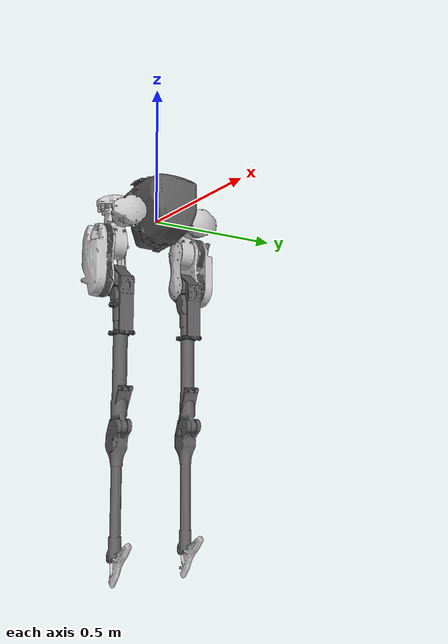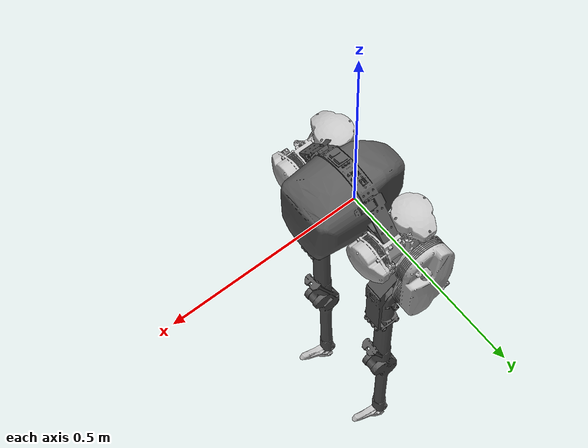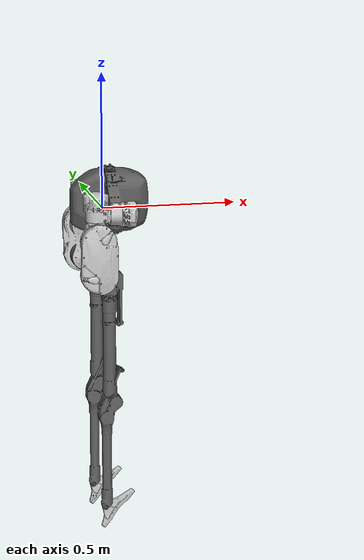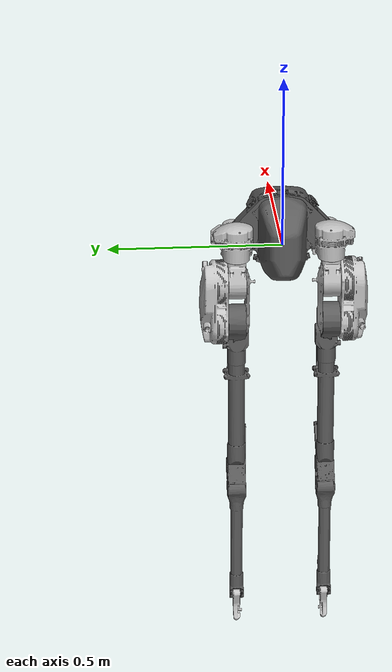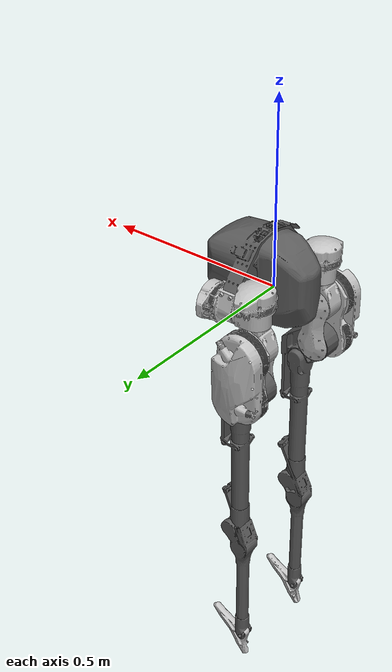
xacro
<?xml version="1.0"?>
<!-- Author: Ross Hartley
	 Email:  rosshart@umich.edu
     Date:   04/24/2016   -->
<robot name="cassie"
  xmlns:xacro="http://ros.org/wiki/xacro">

  <!-- Properties -->
  <xacro:property name="black_RGB" value="0.1 0.1 0.1 1" />
  <xacro:property name="grey_RGB" value="0.35 0.35 0.35 1" />
  <xacro:property name="orange_RGB" value=".9569 .5372 .2588 1" />
  <xacro:property name="blue_RGB" value=".0157 .1176 .2588 1" />
  <xacro:property name="maize_RGB" value=".9451 .7686 0 1" />
  <xacro:property name="light_grey_RGB" value="0.75 0.75 0.75 1" />

  <!-- Link Definitions-->
  <xacro:macro name="map">
    <link name="map">
      <inertial>
        <origin xyz="0 0 0" rpy="0 0 0"/>
        <mass value="0" />
                <inertia ixx="0" ixy="0" ixz="0" iyy="0" iyz="0" izz="0" />
      </inertial>
    </link>
  </xacro:macro>
  <xacro:macro name="x_link">
    <link name="x_link">
      <inertial>
        <origin xyz="0 0 0" rpy="0 0 0"/>
        <mass value="0" />
                <inertia ixx="0" ixy="0" ixz="0" iyy="0" iyz="0" izz="0" />
      </inertial>
    </link>
  </xacro:macro>
  <xacro:macro name="y_link">
    <link name="y_link">
      <inertial>
        <origin xyz="0 0 0" rpy="0 0 0"/>
        <mass value="0" />
                <inertia ixx="0" ixy="0" ixz="0" iyy="0" iyz="0" izz="0" />
      </inertial>
    </link>
  </xacro:macro>
  <xacro:macro name="z_link">
    <link name="z_link">
      <inertial>
        <origin xyz="0 0 0" rpy="0 0 0"/>
        <mass value="0" />
                <inertia ixx="0" ixy="0" ixz="0" iyy="0" iyz="0" izz="0" />
      </inertial>
    </link>
  </xacro:macro>
  <xacro:macro name="yaw_link">
    <link name="yaw_link">
      <inertial>
        <origin xyz="0 0 0" rpy="0 0 0"/>
        <mass value="0" />
                <inertia ixx="0" ixy="0" ixz="0" iyy="0" iyz="0" izz="0" />
      </inertial>
    </link>
  </xacro:macro>
  <xacro:macro name="pitch_link">
    <link name="pitch_link">
      <inertial>
        <origin xyz="0 0 0" rpy="0 0 0"/>
        <mass value="0" />
                <inertia ixx="0" ixy="0" ixz="0" iyy="0" iyz="0" izz="0" />
      </inertial>
    </link>
  </xacro:macro>
  <xacro:macro name="vectorNav">
    <link name="vectorNav">
      <inertial>
        <origin xyz="0 0 0" rpy="0 0 0"/>
        <mass value="0" />
                <inertia ixx="0" ixy="0" ixz="0" iyy="0" iyz="0" izz="0" />
      </inertial>
    </link>
  </xacro:macro>
  <xacro:macro name="pelvis" params="cname color">
    <link name="pelvis">
      <inertial>
        <origin xyz=".0507 0 .0284" rpy="0 0 0"/>
        <mass value="10.33" />
		<inertia ixx=".0942" ixy=".000169" ixz=".015" iyy=".084" iyz=".000516" izz=".113" />
      </inertial>
      <visual>
        <origin xyz="0 0 0" rpy="0 0 0" />
        <geometry>
          <mesh filename="package://cassie_description/meshes/pelvis.stl" scale="1 1 1"/>
        </geometry>
        <material name="${cname}">
          <color rgba="${color}" />
        </material>
      </visual>
    </link>
  </xacro:macro>
  <xacro:macro name="pelvis_abduction" params="side cname color stl_ext">
    <link name="${side}_pelvis_abduction">
      <inertial>
        <origin xyz="0 0 0" rpy="0 0 0"/>
        <mass value="0" />
        <inertia ixx="0" ixy="0" ixz="0" iyy="0" iyz="0" izz="0" />
      </inertial>
      <visual>
        <origin xyz="0 0 0" rpy="0 0 0" />
        <geometry>
          <mesh filename="package://cassie_description/meshes/abduction${stl_ext}.stl" scale="1 1 1"/>
        </geometry>
        <material name="${cname}">
          <color rgba="${color}" />
        </material>
      </visual>
    </link>
  </xacro:macro>
  <xacro:macro name="pelvis_rotation" params="side cname color stl_ext reflect">
    <link name="${side}_pelvis_rotation">
      <inertial>
        <origin xyz=".0257 ${reflect*.0001} .0179" rpy="0 0 0"/>
        <mass value="1.82" />
        <inertia ixx=".00272" ixy="${reflect*.000000703}" ixz=".00000153" iyy=".00559" iyz="${reflect*.00000261}" izz=".004640" />
      </inertial>
      <visual>
        <origin xyz="0 0 0" rpy="0 0 0" />
        <geometry>
          <mesh filename="package://cassie_description/meshes/yaw${stl_ext}.stl" scale="1 1 1"/>
        </geometry>
        <material name="${cname}">
          <color rgba="${color}" />
        </material>
      </visual>
    </link>
  </xacro:macro>
  <xacro:macro name="hip" params="side cname color stl_ext">
    <link name="${side}_hip">
      <inertial>
        <origin xyz="-.0557 0 0" rpy="0 0 0"/>
        <mass value="1.17" />
        <inertia ixx=".000842" ixy=".000000246" ixz="-.000000625" iyy=".006080" iyz="-.00000004" izz=".006440" />
      </inertial>
      <visual>
        <origin xyz="0 0 0" rpy="0 0 0" />
        <geometry>
          <mesh filename="package://cassie_description/meshes/hip${stl_ext}.stl" scale="1 1 1"/>
        </geometry>
        <material name="${cname}">
          <color rgba="${color}" />
        </material>
      </visual>
    </link>
  </xacro:macro>
  <xacro:macro name="thigh" params="side cname color stl_ext reflect">
    <link name="${side}_thigh">
      <inertial>
        <origin xyz=".0598 .0001 ${reflect*-.0358}" rpy="0 0 0"/>
        <mass value="5.52" />
        <inertia ixx=".018" ixy=".000284" ixz="${reflect*-.0117}" iyy=".0563" iyz="${reflect*-.0000193}" izz=".0498" />
      </inertial>
      <visual>
        <origin xyz="0 0 0" rpy="0 0 0" />
        <geometry>
          <mesh filename="package://cassie_description/meshes/thigh${stl_ext}.stl" scale="1 1 1"/>
        </geometry>
        <material name="${cname}">
          <color rgba="${color}" />
        </material>
      </visual>
    </link>
  </xacro:macro>
  <xacro:macro name="knee" params="side cname color stl_ext reflect">
    <link name="${side}_knee">
      <inertial>
        <origin xyz=".023 .0321 ${reflect*-.0022}" rpy="0 0 0"/>
        <mass value=".758" />
        <inertia ixx=".002160" ixy=".000956" ixz="${reflect*.00000284}" iyy=".00144" iyz="${reflect*.000000739}" izz=".00334" />
      </inertial>
      <visual>
        <origin xyz="0 0 0" rpy="0 0 0" />
        <geometry>
          <mesh filename="package://cassie_description/meshes/knee-output${stl_ext}.stl" scale="1 1 1"/>
        </geometry>
        <material name="${cname}">
          <color rgba="${color}" />
        </material>
      </visual>
    </link>
  </xacro:macro>
  <xacro:macro name="shin" params="side cname color stl_ext reflect">
    <link name="${side}_shin">
      <inertial>
        <origin xyz=".1834 .0012 ${reflect*.0002}" rpy="0 0 0"/>
        <mass value=".577" />
        <inertia ixx=".000360" ixy=".000334" ixz="${reflect*-.000000194}" iyy=".0341" iyz="${reflect*.000000265}" izz=".0341" />
      </inertial>
      <visual>
        <origin xyz="0 0 0" rpy="0 0 0" />
        <geometry>
          <mesh filename="package://cassie_description/meshes/shin-bone${stl_ext}.stl" scale="1 1 1"/>
        </geometry>
        <material name="${cname}">
          <color rgba="${color}" />
        </material>
      </visual>
    </link>
  </xacro:macro>
  <xacro:macro name="tarsus" params="side cname color stl_ext reflect">
    <link name="${side}_tarsus">
      <inertial>
        <origin xyz=".1105 -.0306 ${reflect*-.0013}" rpy="0 0 0"/>
        <mass value=".782" />
        <inertia ixx=".00113" ixy="-.00288" ixz="${reflect*-.0000633}" iyy=".0231" iyz="${reflect*.0000362}" izz=".0239" />
      </inertial>
      <visual>
        <origin xyz="0 0 0" rpy="0 0 0" />
        <geometry>
          <mesh filename="package://cassie_description/meshes/tarsus${stl_ext}.stl" scale="1 1 1"/>
        </geometry>
        <material name="${cname}">
          <color rgba="${color}" />
        </material>
      </visual>
    </link>
  </xacro:macro>
  <xacro:macro name="toe" params="side cname color stl_ext reflect">
    <link name="${side}_toe">
      <inertial>
        <origin xyz=".0047 .0275 ${reflect*-.0001}" rpy="0 0 0"/>
        <mass value=".15" />
        <inertia ixx=".000287" ixy="-.0000986" ixz="${reflect*-.00000146}" iyy=".000171" iyz="${reflect*.000000172}" izz=".000449" />
      </inertial>
      <visual>
        <origin xyz="0 0 0" rpy="0 0 0" />
        <geometry>
          <mesh filename="package://cassie_description/meshes/toe${stl_ext}.stl" scale="1 1 1"/>
        </geometry>
        <material name="${cname}">
          <color rgba="${color}" />
        </material>
      </visual>
    </link>
  </xacro:macro>

  <!-- Joint Definitions -->
  <xacro:macro name="x">
    <joint name="x" type="prismatic">
      <origin xyz="0 0 0" rpy="0 0 0"/>
      <axis xyz="1 0 0"/>
      <limit lower="-1000" upper="1000" effort="1000" velocity="1000" />
      <parent link="map" />
      <child link="x_link" />
    </joint>
  </xacro:macro>
  <xacro:macro name="y">
    <joint name="y" type="prismatic">
      <origin xyz="0 0 0" rpy="0 0 0"/>
      <axis xyz="0 1 0"/>
      <limit lower="-1000" upper="1000" effort="1000" velocity="1000" />
      <parent link="x_link" />
      <child link="y_link" />
    </joint>
  </xacro:macro>
  <xacro:macro name="z">
    <joint name="z" type="prismatic">
      <origin xyz="0 0 0" rpy="0 0 0"/>
      <axis xyz="0 0 1"/>
      <limit lower="-1000" upper="1000" effort="1000" velocity="1000" />
      <parent link="y_link" />
      <child link="z_link" />
    </joint>
  </xacro:macro>
  <xacro:macro name="yaw">
    <joint name="yaw" type="continuous">
      <origin xyz="0 0 0" rpy="0 0 0"/>
      <axis xyz="0 0 1"/>
      <parent link="z_link" />
      <child link="yaw_link" />
    </joint>
  </xacro:macro>
  <xacro:macro name="pitch">
    <joint name="pitch" type="continuous">
      <origin xyz="0 0 0" rpy="0 0 0"/>
      <axis xyz="0 1 0"/>
      <parent link="yaw_link" />
      <child link="pitch_link" />
    </joint>
  </xacro:macro>
  <xacro:macro name="roll">
    <joint name="roll" type="continuous">
      <origin xyz="0 0 0" rpy="0 0 0"/>
      <axis xyz="1 0 0"/>
      <parent link="pitch_link" />
      <child link="pelvis" />
    </joint>
  </xacro:macro>
  <xacro:macro name="fixed_pelvis_to_vectorNav">
    <joint name="fixed_pelvis_to_vectorNav" type="fixed">
      <origin xyz="0.03155 0 -0.07996" rpy="0 0 0"/>
      <parent link="pelvis" />
      <child link="vectorNav" />
    </joint>
  </xacro:macro>
  <xacro:macro name="fixed_pelvis_to_abduction" params="side reflect">
    <joint name="fixed_${side}" type="fixed">
      <origin xyz="0.021 ${reflect*0.135} 0" rpy="0 ${pi/2} 0"/>
      <parent link="pelvis" />
      <child link="${side}_pelvis_abduction" />
    </joint>
  </xacro:macro>
  <xacro:macro name="hip_abduction" params="side">
    <joint name="hip_abduction_${side}" type="continuous">
      <origin xyz="0 0 -0.07" rpy="0 ${-pi/2} 0"/>
      <axis xyz="1 0 0"/>
      <parent link="${side}_pelvis_abduction" />
      <child link="${side}_pelvis_rotation" />
	  <xacro:if value="${side == 'left'}">
	    <limit lower="-0.2618" upper="0.3927" effort="4.5" velocity="12.1475" />
	  </xacro:if>
	  <xacro:if value="${side == 'right'}">
	    <limit lower="-0.3927" upper="0.2618" effort="4.5" velocity="12.1475" />
	  </xacro:if>
    </joint>
  </xacro:macro>
  <xacro:macro name="hip_rotation" params="side">
    <joint name="hip_rotation_${side}" type="continuous">
      <origin xyz="0 0 -0.09" rpy="0 ${pi/2} ${-pi/2}"/>
      <axis xyz="-1 0 0"/>
      <parent link="${side}_pelvis_rotation" />
      <child link="${side}_hip" />
      <limit lower="-0.3927" upper="0.3927" effort="4.5" velocity="12.1475" />
    </joint>
  </xacro:macro>
  <xacro:macro name="hip_flexion" params="side">
    <joint name="hip_flexion_${side}" type="continuous">
      <origin xyz="0 0 0" rpy="0 0 0"/>
      <axis xyz="0 0 1"/>
      <parent link="${side}_hip" />
      <child link="${side}_thigh" />
      <limit lower="-0.8727" upper="1.3963" effort="12.2" velocity="8.5085" />
    </joint>
  </xacro:macro>
  <xacro:macro name="knee_joint" params="side reflect">
    <joint name="knee_joint_${side}" type="continuous">
      <origin xyz="0.12 0 ${reflect*0.0045}" rpy="0 0 0"/>
      <axis xyz="0 0 1"/>
      <parent link="${side}_thigh" />
      <child link="${side}_knee" />
      <limit lower="-2.8623" upper="-0.6458" effort="12.2" velocity="8.5085" />
    </joint>
  </xacro:macro>
  <xacro:macro name="knee_to_shin" params="side">
    <joint name="knee_to_shin_${side}" type="continuous">
      <origin xyz="0.0607 0.0474 0" rpy="0 0 0"/>
      <axis xyz="0 0 1"/>
      <parent link="${side}_knee" />
      <child link="${side}_shin" />
      <limit lower="-100" upper="100" effort="0" velocity="100" />
    </joint>
  </xacro:macro>
  <xacro:macro name="ankle_joint" params="side">
    <joint name="ankle_joint_${side}" type="continuous">
      <origin xyz="0.4348 0.02 0" rpy="0 0 0"/>
      <axis xyz="0 0 1"/>
      <parent link="${side}_shin" />
      <child link="${side}_tarsus" />
      <limit lower="-100" upper="100" effort="0" velocity="100" />
    </joint>
  </xacro:macro>
  <xacro:macro name="toe_joint" params="side">
    <joint name="toe_joint_${side}" type="continuous">
      <origin xyz="0.408 -0.04 0" rpy="0 0 0"/>
      <axis xyz="0 0 1"/>
      <parent link="${side}_tarsus" />
      <child link="${side}_toe" />
      <limit lower="-2.4435" upper="-0.5236" effort="0.9" velocity="11.5192" />
    </joint>
  </xacro:macro>

  <!-- Transmission Definitions -->
  <xacro:macro name="hip_abduction_trans" params="side">
    <transmission name="hip_abduction_trans_${side}" type="transmission_interface/SimpleTransmission">
	  <joint name="hip_abduction_${side}"/>
	  <actuator name="hip_abduction_motor_${side}"/>
	  <motorInertia>0.000061</motorInertia>
	  <mechanicalReduction>25</mechanicalReduction>
    </transmission>
  </xacro:macro>
  <xacro:macro name="hip_rotation_trans" params="side">
    <transmission name="hip_rotation_trans_${side}" type="transmission_interface/SimpleTransmission">
	  <joint name="hip_rotation_${side}"/>
	  <actuator name="hip_rotation_motor_${side}"/>
	  <motorInertia>0.000061</motorInertia>
	  <mechanicalReduction>25</mechanicalReduction>
    </transmission>
  </xacro:macro>
  <xacro:macro name="hip_flexion_trans" params="side">
    <transmission name="hip_flexion_trans_${side}" type="transmission_interface/SimpleTransmission">
	  <joint name="hip_flexion_${side}"/>
	  <actuator name="hip_flexion_motor_${side}"/>
	  <motorInertia>0.000365</motorInertia>
	  <mechanicalReduction>16</mechanicalReduction>
    </transmission>
  </xacro:macro>
  <xacro:macro name="knee_joint_trans" params="side">
    <transmission name="knee_joint_trans_${side}" type="transmission_interface/SimpleTransmission">
	  <joint name="knee_joint_${side}"/>
	  <actuator name="knee_joint_motor_${side}"/>
	  <motorInertia>0.000365</motorInertia>
	  <mechanicalReduction>16</mechanicalReduction>
    </transmission>
  </xacro:macro>
  <xacro:macro name="toe_joint_trans" params="side">
    <transmission name="toe_joint_trans_${side}" type="transmission_interface/SimpleTransmission">
	  <joint name="toe_joint_${side}"/>
	  <actuator name="toe_joint_motor_${side}"/>
	  <motorInertia>0.0000049</motorInertia>
	  <mechanicalReduction>50</mechanicalReduction>
    </transmission>
  </xacro:macro>

  <!-- Links -->
  <xacro:map />
  <xacro:x_link />
  <xacro:y_link />
  <xacro:z_link />
  <xacro:yaw_link />
  <xacro:pitch_link />
  <xacro:vectorNav />
  <xacro:pelvis cname="grey" color="${grey_RGB}" />
  <xacro:pelvis_abduction side="left" cname="light_grey" color="${light_grey_RGB}" stl_ext=""/>
  <xacro:pelvis_rotation side="left" cname="light_grey" color="${light_grey_RGB}" stl_ext="" reflect="1" />
  <xacro:hip side="left" cname="light_grey" color="${light_grey_RGB}" stl_ext="" />
  <xacro:thigh side="left" cname="light_grey" color="${light_grey_RGB}" stl_ext="" reflect="1"/>
  <xacro:knee side="left" cname="grey" color="${grey_RGB}" stl_ext="" reflect="1"/>
  <xacro:shin side="left" cname="grey" color="${grey_RGB}" stl_ext="" reflect="1"/>
  <xacro:tarsus side="left" cname="grey" color="${grey_RGB}" stl_ext="" reflect="1"/>
  <xacro:toe side="left" cname="light_grey" color="${light_grey_RGB}" stl_ext="" reflect="1"/>
  <xacro:pelvis_abduction side="right" cname="light_grey" color="${light_grey_RGB}" stl_ext="_mirror"/>
  <xacro:pelvis_rotation side="right" cname="light_grey" color="${light_grey_RGB}" stl_ext="_mirror" reflect="-1"/>
  <xacro:hip side="right" cname="light_grey" color="${light_grey_RGB}" stl_ext="_mirror"/>
  <xacro:thigh side="right" cname="light_grey" color="${light_grey_RGB}" stl_ext="_mirror" reflect="-1"/>
  <xacro:knee side="right" cname="grey" color="${grey_RGB}" stl_ext="_mirror" reflect="-1"/>
  <xacro:shin side="right" cname="grey" color="${grey_RGB}" stl_ext="_mirror" reflect="-1"/>
  <xacro:tarsus side="right" cname="grey" color="${grey_RGB}" stl_ext="_mirror" reflect="-1"/>
  <xacro:toe side="right" cname="light_grey" color="${light_grey_RGB}" stl_ext="_mirror" reflect="-1"/>

  <!-- Joints -->
  <xacro:x />
  <xacro:y />
  <xacro:z />
  <xacro:yaw />
  <xacro:pitch />
  <xacro:roll />
  <xacro:fixed_pelvis_to_vectorNav />
  <xacro:fixed_pelvis_to_abduction side="left" reflect="1"/>
  <xacro:hip_abduction side="left"/>
  <xacro:hip_rotation side="left"/>
  <xacro:hip_flexion side="left"/>
  <xacro:knee_joint side="left" reflect="1"/>
  <xacro:knee_to_shin side="left"/>
  <xacro:ankle_joint side="left"/>
  <xacro:toe_joint side="left"/>
  <xacro:fixed_pelvis_to_abduction side="right" reflect="-1"/>
  <xacro:hip_abduction side="right"/>
  <xacro:hip_rotation side="right"/>
  <xacro:hip_flexion side="right"/>
  <xacro:knee_joint side="right" reflect="-1"/>
  <xacro:knee_to_shin side="right"/>
  <xacro:ankle_joint side="right"/>
  <xacro:toe_joint side="right"/>

  <!-- Transmissions -->
  <xacro:hip_abduction_trans side="left"/>
  <xacro:hip_rotation_trans side="left"/>
  <xacro:hip_flexion_trans side="left"/>
  <xacro:knee_joint_trans side="left"/>
  <xacro:toe_joint_trans side="left"/>
  <xacro:hip_abduction_trans side="right"/>
  <xacro:hip_rotation_trans side="right"/>
  <xacro:hip_flexion_trans side="right"/>
  <xacro:knee_joint_trans side="right"/>
  <xacro:toe_joint_trans side="right"/>

</robot>
